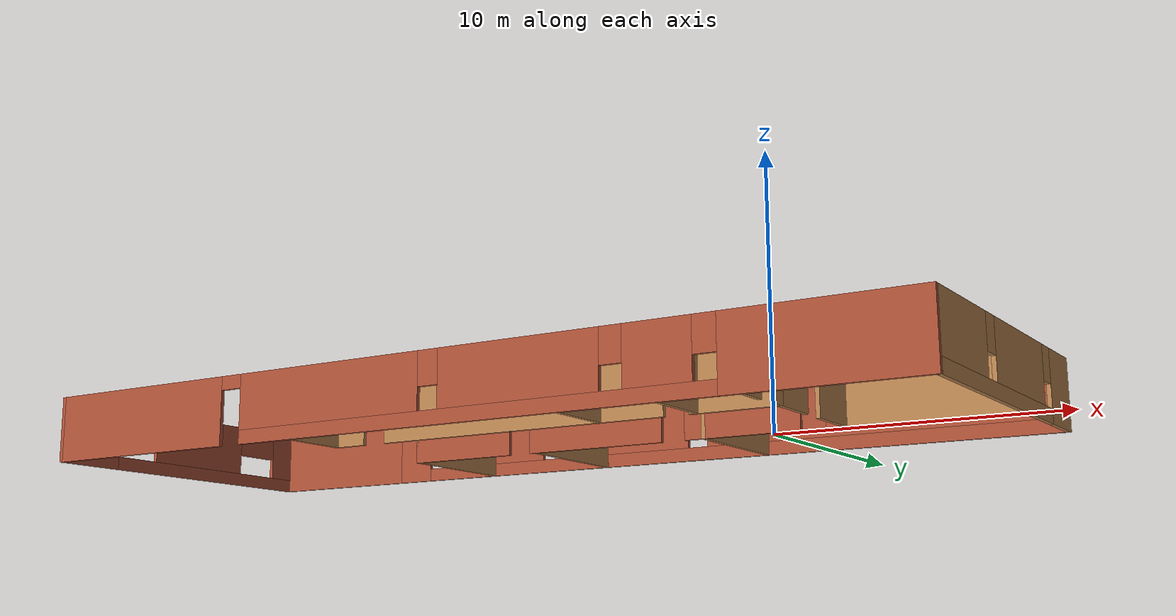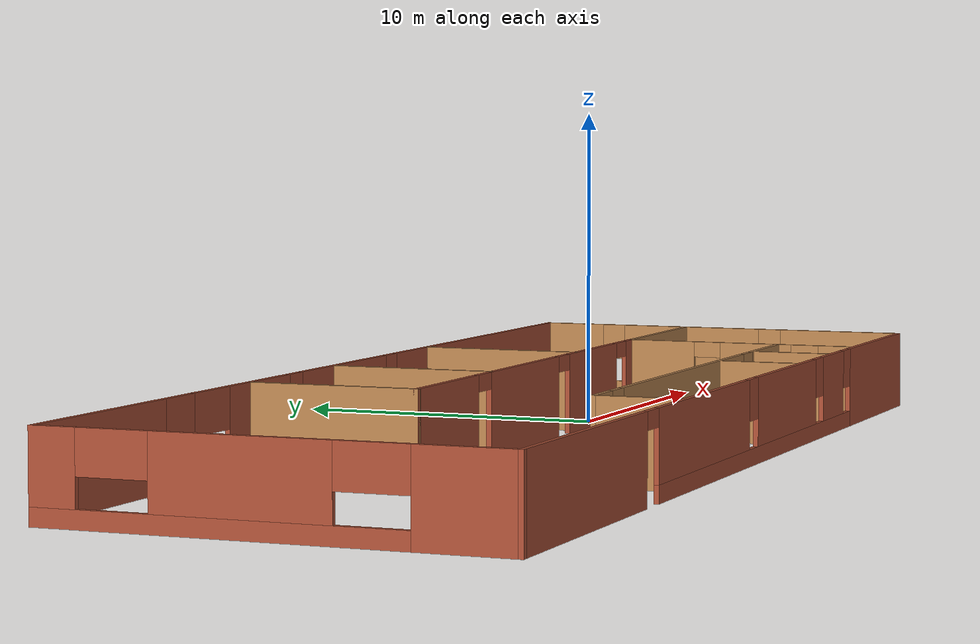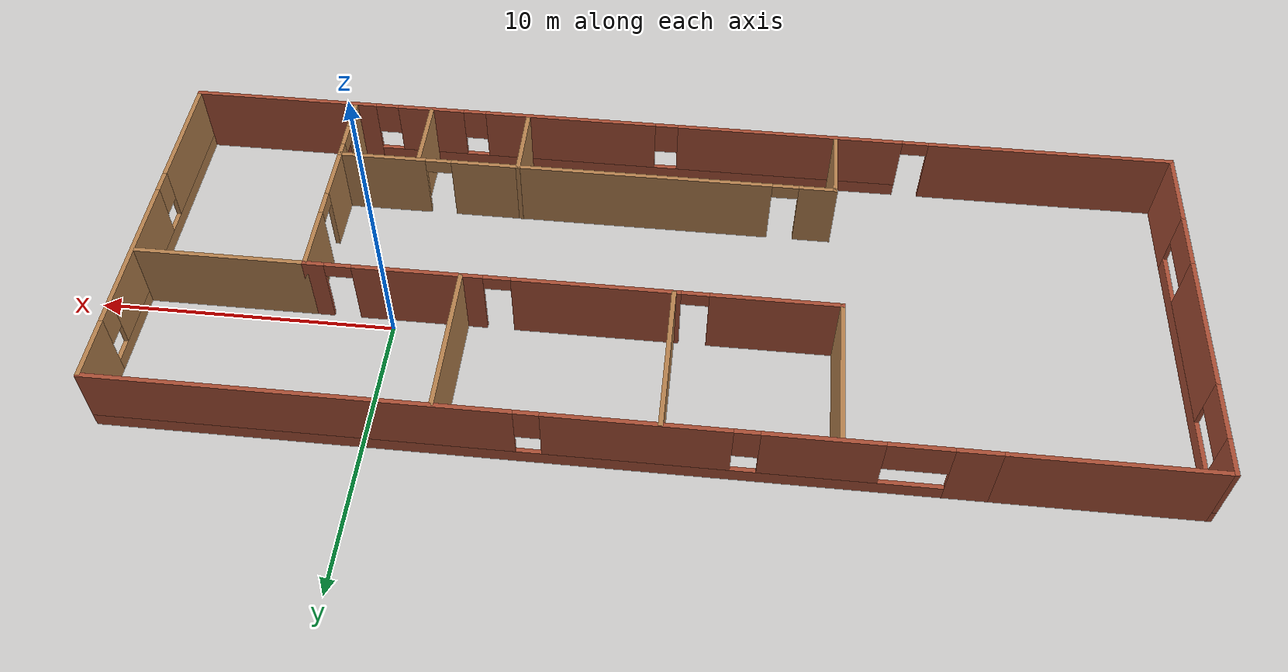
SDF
<?xml version='1.0'?>
<sdf version='1.6'>
  <model name='SingleFloorStructure'>
    <pose frame=''>-8.71396 -1.72074 0 0 -0 0</pose>
    <link name='Wall_1'>
      <pose frame=''>3.25 6.425 0 0 -0 0</pose>
      <visual name='Wall_1_Visual_0'>
        <pose frame=''>-13.2253 0 1.25 0 -0 0</pose>
        <geometry>
          <box>
            <size>1.54948 0.15 2.5</size>
          </box>
        </geometry>
        <material>
          <script>
            <uri>file://media/materials/scripts/gazebo.material</uri>
            <name>Gazebo/Bricks</name>
          </script>
          <ambient>1 1 1 1</ambient>
        </material>
        <meta>
          <layer>0</layer>
        </meta>
      </visual>
      <collision name='Wall_1_Collision_0'>
        <geometry>
          <box>
            <size>1.54948 0.15 2.5</size>
          </box>
        </geometry>
        <pose frame=''>-13.2253 0 1.25 0 -0 0</pose>
      </collision>
      <visual name='Wall_1_Visual_1'>
        <pose frame=''>0.774739 0 0.25 0 -0 0</pose>
        <geometry>
          <box>
            <size>26.4505 0.15 0.5</size>
          </box>
        </geometry>
        <material>
          <script>
            <uri>file://media/materials/scripts/gazebo.material</uri>
            <name>Gazebo/Bricks</name>
          </script>
          <ambient>1 1 1 1</ambient>
        </material>
        <meta>
          <layer>0</layer>
        </meta>
      </visual>
      <collision name='Wall_1_Collision_1'>
        <geometry>
          <box>
            <size>26.4505 0.15 0.5</size>
          </box>
        </geometry>
        <pose frame=''>0.774739 0 0.25 0 -0 0</pose>
      </collision>
      <visual name='Wall_1_Visual_2'>
        <pose frame=''>-8.61765 0 1.5 0 -0 0</pose>
        <geometry>
          <box>
            <size>3.66574 0.15 2</size>
          </box>
        </geometry>
        <material>
          <script>
            <uri>file://media/materials/scripts/gazebo.material</uri>
            <name>Gazebo/Bricks</name>
          </script>
          <ambient>1 1 1 1</ambient>
        </material>
        <meta>
          <layer>0</layer>
        </meta>
      </visual>
      <collision name='Wall_1_Collision_2'>
        <geometry>
          <box>
            <size>3.66574 0.15 2</size>
          </box>
        </geometry>
        <pose frame=''>-8.61765 0 1.5 0 -0 0</pose>
      </collision>
      <visual name='Wall_1_Visual_3'>
        <pose frame=''>-3.09557 0 1.5 0 -0 0</pose>
        <geometry>
          <box>
            <size>5.77843 0.15 2</size>
          </box>
        </geometry>
        <material>
          <script>
            <uri>file://media/materials/scripts/gazebo.material</uri>
            <name>Gazebo/Bricks</name>
          </script>
          <ambient>1 1 1 1</ambient>
        </material>
        <meta>
          <layer>0</layer>
        </meta>
      </visual>
      <collision name='Wall_1_Collision_3'>
        <geometry>
          <box>
            <size>5.77843 0.15 2</size>
          </box>
        </geometry>
        <pose frame=''>-3.09557 0 1.5 0 -0 0</pose>
      </collision>
      <visual name='Wall_1_Visual_4'>
        <pose frame=''>7.29682 0 1.5 0 -0 0</pose>
        <geometry>
          <box>
            <size>13.4064 0.15 2</size>
          </box>
        </geometry>
        <material>
          <script>
            <uri>file://media/materials/scripts/gazebo.material</uri>
            <name>Gazebo/Bricks</name>
          </script>
          <ambient>1 1 1 1</ambient>
        </material>
        <meta>
          <layer>0</layer>
        </meta>
      </visual>
      <collision name='Wall_1_Collision_4'>
        <geometry>
          <box>
            <size>13.4064 0.15 2</size>
          </box>
        </geometry>
        <pose frame=''>7.29682 0 1.5 0 -0 0</pose>
      </collision>
      <visual name='Wall_1_Visual_5'>
        <pose frame=''>-11.4505 0 1.9 0 -0 0</pose>
        <geometry>
          <box>
            <size>2 0.15 1.2</size>
          </box>
        </geometry>
        <material>
          <script>
            <uri>file://media/materials/scripts/gazebo.material</uri>
            <name>Gazebo/Bricks</name>
          </script>
          <ambient>1 1 1 1</ambient>
        </material>
        <meta>
          <layer>0</layer>
        </meta>
      </visual>
      <collision name='Wall_1_Collision_5'>
        <geometry>
          <box>
            <size>2 0.15 1.2</size>
          </box>
        </geometry>
        <pose frame=''>-11.4505 0 1.9 0 -0 0</pose>
      </collision>
      <visual name='Wall_1_Visual_6'>
        <pose frame=''>-6.38478 0 1.9 0 -0 0</pose>
        <geometry>
          <box>
            <size>0.8 0.15 1.2</size>
          </box>
        </geometry>
        <material>
          <script>
            <uri>file://media/materials/scripts/gazebo.material</uri>
            <name>Gazebo/Bricks</name>
          </script>
          <ambient>1 1 1 1</ambient>
        </material>
        <meta>
          <layer>0</layer>
        </meta>
      </visual>
      <collision name='Wall_1_Collision_6'>
        <geometry>
          <box>
            <size>0.8 0.15 1.2</size>
          </box>
        </geometry>
        <pose frame=''>-6.38478 0 1.9 0 -0 0</pose>
      </collision>
      <visual name='Wall_1_Visual_7'>
        <pose frame=''>0.193647 0 1.9 0 -0 0</pose>
        <geometry>
          <box>
            <size>0.8 0.15 1.2</size>
          </box>
        </geometry>
        <material>
          <script>
            <uri>file://media/materials/scripts/gazebo.material</uri>
            <name>Gazebo/Bricks</name>
          </script>
          <ambient>1 1 1 1</ambient>
        </material>
        <meta>
          <layer>0</layer>
        </meta>
      </visual>
      <collision name='Wall_1_Collision_7'>
        <geometry>
          <box>
            <size>0.8 0.15 1.2</size>
          </box>
        </geometry>
        <pose frame=''>0.193647 0 1.9 0 -0 0</pose>
      </collision>
    </link>
    <link name='Wall_10'>
      <pose frame=''>11.4369 -1.29462 0 0 0 -1.5708</pose>
      <visual name='Wall_10_Visual_0'>
        <pose frame=''>-1.45777 0 1.25 0 -0 0</pose>
        <geometry>
          <box>
            <size>2.33446 0.15 2.5</size>
          </box>
        </geometry>
        <material>
          <script>
            <uri>file://media/materials/scripts/gazebo.material</uri>
            <name>Gazebo/Wood</name>
          </script>
          <ambient>1 1 1 1</ambient>
        </material>
        <meta>
          <layer>0</layer>
        </meta>
      </visual>
      <collision name='Wall_10_Collision_0'>
        <geometry>
          <box>
            <size>2.33446 0.15 2.5</size>
          </box>
        </geometry>
        <pose frame=''>-1.45777 0 1.25 0 -0 0</pose>
      </collision>
      <visual name='Wall_10_Visual_1'>
        <pose frame=''>1.61723 0 1.25 0 -0 0</pose>
        <geometry>
          <box>
            <size>2.01554 0.15 2.5</size>
          </box>
        </geometry>
        <material>
          <script>
            <uri>file://media/materials/scripts/gazebo.material</uri>
            <name>Gazebo/Wood</name>
          </script>
          <ambient>1 1 1 1</ambient>
        </material>
        <meta>
          <layer>0</layer>
        </meta>
      </visual>
      <collision name='Wall_10_Collision_1'>
        <geometry>
          <box>
            <size>2.01554 0.15 2.5</size>
          </box>
        </geometry>
        <pose frame=''>1.61723 0 1.25 0 -0 0</pose>
      </collision>
      <visual name='Wall_10_Visual_2'>
        <pose frame=''>0.159457 0 2.25 0 -0 0</pose>
        <geometry>
          <box>
            <size>0.9 0.15 0.5</size>
          </box>
        </geometry>
        <material>
          <script>
            <uri>file://media/materials/scripts/gazebo.material</uri>
            <name>Gazebo/Wood</name>
          </script>
          <ambient>1 1 1 1</ambient>
        </material>
        <meta>
          <layer>0</layer>
        </meta>
      </visual>
      <collision name='Wall_10_Collision_2'>
        <geometry>
          <box>
            <size>0.9 0.15 0.5</size>
          </box>
        </geometry>
        <pose frame=''>0.159457 0 2.25 0 -0 0</pose>
      </collision>
    </link>
    <link name='Wall_11'>
      <pose frame=''>2.88687 -3.84462 0 0 -0 3.14159</pose>
      <visual name='Wall_11_Visual_0'>
        <pose frame=''>-7.08374 0 1.25 0 -0 0</pose>
        <geometry>
          <box>
            <size>3.08253 0.15 2.5</size>
          </box>
        </geometry>
        <material>
          <script>
            <uri>file://media/materials/scripts/gazebo.material</uri>
            <name>Gazebo/Wood</name>
          </script>
          <ambient>1 1 1 1</ambient>
        </material>
        <meta>
          <layer>0</layer>
        </meta>
      </visual>
      <collision name='Wall_11_Collision_0'>
        <geometry>
          <box>
            <size>3.08253 0.15 2.5</size>
          </box>
        </geometry>
        <pose frame=''>-7.08374 0 1.25 0 -0 0</pose>
      </collision>
      <visual name='Wall_11_Visual_1'>
        <pose frame=''>0.886791 0 1.25 0 -0 0</pose>
        <geometry>
          <box>
            <size>11.0585 0.15 2.5</size>
          </box>
        </geometry>
        <material>
          <script>
            <uri>file://media/materials/scripts/gazebo.material</uri>
            <name>Gazebo/Wood</name>
          </script>
          <ambient>1 1 1 1</ambient>
        </material>
        <meta>
          <layer>0</layer>
        </meta>
      </visual>
      <collision name='Wall_11_Collision_1'>
        <geometry>
          <box>
            <size>11.0585 0.15 2.5</size>
          </box>
        </geometry>
        <pose frame=''>0.886791 0 1.25 0 -0 0</pose>
      </collision>
      <visual name='Wall_11_Visual_2'>
        <pose frame=''>7.97053 0 1.25 0 -0 0</pose>
        <geometry>
          <box>
            <size>1.30895 0.15 2.5</size>
          </box>
        </geometry>
        <material>
          <script>
            <uri>file://media/materials/scripts/gazebo.material</uri>
            <name>Gazebo/Wood</name>
          </script>
          <ambient>1 1 1 1</ambient>
        </material>
        <meta>
          <layer>0</layer>
        </meta>
      </visual>
      <collision name='Wall_11_Collision_2'>
        <geometry>
          <box>
            <size>1.30895 0.15 2.5</size>
          </box>
        </geometry>
        <pose frame=''>7.97053 0 1.25 0 -0 0</pose>
      </collision>
      <visual name='Wall_11_Visual_3'>
        <pose frame=''>-5.09247 0 2.25 0 -0 0</pose>
        <geometry>
          <box>
            <size>0.9 0.15 0.5</size>
          </box>
        </geometry>
        <material>
          <script>
            <uri>file://media/materials/scripts/gazebo.material</uri>
            <name>Gazebo/Wood</name>
          </script>
          <ambient>1 1 1 1</ambient>
        </material>
        <meta>
          <layer>0</layer>
        </meta>
      </visual>
      <collision name='Wall_11_Collision_3'>
        <geometry>
          <box>
            <size>0.9 0.15 0.5</size>
          </box>
        </geometry>
        <pose frame=''>-5.09247 0 2.25 0 -0 0</pose>
      </collision>
      <visual name='Wall_11_Visual_4'>
        <pose frame=''>6.86605 0 2.25 0 -0 0</pose>
        <geometry>
          <box>
            <size>0.9 0.15 0.5</size>
          </box>
        </geometry>
        <material>
          <script>
            <uri>file://media/materials/scripts/gazebo.material</uri>
            <name>Gazebo/Wood</name>
          </script>
          <ambient>1 1 1 1</ambient>
        </material>
        <meta>
          <layer>0</layer>
        </meta>
      </visual>
      <collision name='Wall_11_Collision_4'>
        <geometry>
          <box>
            <size>0.9 0.15 0.5</size>
          </box>
        </geometry>
        <pose frame=''>6.86605 0 2.25 0 -0 0</pose>
      </collision>
    </link>
    <link name='Wall_12'>
      <collision name='Wall_12_Collision'>
        <geometry>
          <box>
            <size>2.6 0.15 2.5</size>
          </box>
        </geometry>
        <pose frame=''>0 0 1.25 0 -0 0</pose>
      </collision>
      <visual name='Wall_12_Visual'>
        <pose frame=''>0 0 1.25 0 -0 0</pose>
        <geometry>
          <box>
            <size>2.6 0.15 2.5</size>
          </box>
        </geometry>
        <material>
          <script>
            <uri>file://media/materials/scripts/gazebo.material</uri>
            <name>Gazebo/Wood</name>
          </script>
          <ambient>1 1 1 1</ambient>
        </material>
        <meta>
          <layer>0</layer>
        </meta>
      </visual>
      <pose frame=''>-5.66313 -5.06962 0 0 0 -1.5708</pose>
    </link>
    <link name='Wall_14'>
      <collision name='Wall_14_Collision'>
        <geometry>
          <box>
            <size>5.25 0.15 2.5</size>
          </box>
        </geometry>
        <pose frame=''>0 0 1.25 0 -0 0</pose>
      </collision>
      <visual name='Wall_14_Visual'>
        <pose frame=''>0 0 1.25 0 -0 0</pose>
        <geometry>
          <box>
            <size>5.25 0.15 2.5</size>
          </box>
        </geometry>
        <material>
          <script>
            <uri>file://media/materials/scripts/gazebo.material</uri>
            <name>Gazebo/Wood</name>
          </script>
          <ambient>1 1 1 1</ambient>
        </material>
        <meta>
          <layer>0</layer>
        </meta>
      </visual>
      <pose frame=''>-0.572991 3.84584 0 0 0 -1.5708</pose>
    </link>
    <link name='Wall_16'>
      <collision name='Wall_16_Collision'>
        <geometry>
          <box>
            <size>5.25 0.15 2.5</size>
          </box>
        </geometry>
        <pose frame=''>0 0 1.25 0 -0 0</pose>
      </collision>
      <visual name='Wall_16_Visual'>
        <pose frame=''>0 0 1.25 0 -0 0</pose>
        <geometry>
          <box>
            <size>5.25 0.15 2.5</size>
          </box>
        </geometry>
        <material>
          <script>
            <uri>file://media/materials/scripts/gazebo.material</uri>
            <name>Gazebo/Wood</name>
          </script>
          <ambient>1 1 1 1</ambient>
        </material>
        <meta>
          <layer>0</layer>
        </meta>
      </visual>
      <pose frame=''>6.30446 3.80538 0 0 0 -1.5708</pose>
    </link>
    <link name='Wall_18'>
      <collision name='Wall_18_Collision'>
        <geometry>
          <box>
            <size>5.75 0.15 2.5</size>
          </box>
        </geometry>
        <pose frame=''>0 0 1.25 0 -0 0</pose>
      </collision>
      <visual name='Wall_18_Visual'>
        <pose frame=''>0 0 1.25 0 -0 0</pose>
        <geometry>
          <box>
            <size>5.75 0.15 2.5</size>
          </box>
        </geometry>
        <material>
          <script>
            <uri>file://media/materials/scripts/gazebo.material</uri>
            <name>Gazebo/Wood</name>
          </script>
          <ambient>1 1 1 1</ambient>
        </material>
        <meta>
          <layer>0</layer>
        </meta>
      </visual>
      <pose frame=''>14.2369 1.25538 0 0 -0 0</pose>
    </link>
    <link name='Wall_2'>
      <pose frame=''>17.175 0 0 0 0 -1.5708</pose>
      <visual name='Wall_2_Visual_0'>
        <pose frame=''>-5.40412 0 1.25 0 -0 0</pose>
        <geometry>
          <box>
            <size>2.19175 0.15 2.5</size>
          </box>
        </geometry>
        <material>
          <script>
            <uri>file://media/materials/scripts/gazebo.material</uri>
            <name>Gazebo/Wood</name>
          </script>
          <ambient>1 1 1 1</ambient>
        </material>
        <meta>
          <layer>0</layer>
        </meta>
      </visual>
      <collision name='Wall_2_Collision_0'>
        <geometry>
          <box>
            <size>2.19175 0.15 2.5</size>
          </box>
        </geometry>
        <pose frame=''>-5.40412 0 1.25 0 -0 0</pose>
      </collision>
      <visual name='Wall_2_Visual_1'>
        <pose frame=''>1.09587 0 0.25 0 -0 0</pose>
        <geometry>
          <box>
            <size>10.8082 0.15 0.5</size>
          </box>
        </geometry>
        <material>
          <script>
            <uri>file://media/materials/scripts/gazebo.material</uri>
            <name>Gazebo/Wood</name>
          </script>
          <ambient>1 1 1 1</ambient>
        </material>
        <meta>
          <layer>0</layer>
        </meta>
      </visual>
      <collision name='Wall_2_Collision_1'>
        <geometry>
          <box>
            <size>10.8082 0.15 0.5</size>
          </box>
        </geometry>
        <pose frame=''>1.09587 0 0.25 0 -0 0</pose>
      </collision>
      <visual name='Wall_2_Visual_2'>
        <pose frame=''>-1.02359 0 1.5 0 -0 0</pose>
        <geometry>
          <box>
            <size>4.96932 0.15 2</size>
          </box>
        </geometry>
        <material>
          <script>
            <uri>file://media/materials/scripts/gazebo.material</uri>
            <name>Gazebo/Wood</name>
          </script>
          <ambient>1 1 1 1</ambient>
        </material>
        <meta>
          <layer>0</layer>
        </meta>
      </visual>
      <collision name='Wall_2_Collision_2'>
        <geometry>
          <box>
            <size>4.96932 0.15 2</size>
          </box>
        </geometry>
        <pose frame=''>-1.02359 0 1.5 0 -0 0</pose>
      </collision>
      <visual name='Wall_2_Visual_3'>
        <pose frame=''>4.38053 0 1.5 0 -0 0</pose>
        <geometry>
          <box>
            <size>4.23893 0.15 2</size>
          </box>
        </geometry>
        <material>
          <script>
            <uri>file://media/materials/scripts/gazebo.material</uri>
            <name>Gazebo/Wood</name>
          </script>
          <ambient>1 1 1 1</ambient>
        </material>
        <meta>
          <layer>0</layer>
        </meta>
      </visual>
      <collision name='Wall_2_Collision_3'>
        <geometry>
          <box>
            <size>4.23893 0.15 2</size>
          </box>
        </geometry>
        <pose frame=''>4.38053 0 1.5 0 -0 0</pose>
      </collision>
      <visual name='Wall_2_Visual_4'>
        <pose frame=''>-3.90825 0 1.9 0 -0 0</pose>
        <geometry>
          <box>
            <size>0.8 0.15 1.2</size>
          </box>
        </geometry>
        <material>
          <script>
            <uri>file://media/materials/scripts/gazebo.material</uri>
            <name>Gazebo/Wood</name>
          </script>
          <ambient>1 1 1 1</ambient>
        </material>
        <meta>
          <layer>0</layer>
        </meta>
      </visual>
      <collision name='Wall_2_Collision_4'>
        <geometry>
          <box>
            <size>0.8 0.15 1.2</size>
          </box>
        </geometry>
        <pose frame=''>-3.90825 0 1.9 0 -0 0</pose>
      </collision>
      <visual name='Wall_2_Visual_5'>
        <pose frame=''>1.86107 0 1.9 0 -0 0</pose>
        <geometry>
          <box>
            <size>0.8 0.15 1.2</size>
          </box>
        </geometry>
        <material>
          <script>
            <uri>file://media/materials/scripts/gazebo.material</uri>
            <name>Gazebo/Wood</name>
          </script>
          <ambient>1 1 1 1</ambient>
        </material>
        <meta>
          <layer>0</layer>
        </meta>
      </visual>
      <collision name='Wall_2_Collision_5'>
        <geometry>
          <box>
            <size>0.8 0.15 1.2</size>
          </box>
        </geometry>
        <pose frame=''>1.86107 0 1.9 0 -0 0</pose>
      </collision>
    </link>
    <link name='Wall_24'>
      <pose frame=''>11.4369 -5.06962 0 0 0 -1.5708</pose>
      <visual name='Wall_24_Visual_0'>
        <pose frame=''>-1.01737 0 1.25 0 -0 0</pose>
        <geometry>
          <box>
            <size>0.565265 0.15 2.5</size>
          </box>
        </geometry>
        <material>
          <script>
            <uri>file://media/materials/scripts/gazebo.material</uri>
            <name>Gazebo/Wood</name>
          </script>
          <ambient>1 1 1 1</ambient>
        </material>
        <meta>
          <layer>0</layer>
        </meta>
      </visual>
      <collision name='Wall_24_Collision_0'>
        <geometry>
          <box>
            <size>0.565265 0.15 2.5</size>
          </box>
        </geometry>
        <pose frame=''>-1.01737 0 1.25 0 -0 0</pose>
      </collision>
      <visual name='Wall_24_Visual_1'>
        <pose frame=''>0.732632 0 1.25 0 -0 0</pose>
        <geometry>
          <box>
            <size>1.13474 0.15 2.5</size>
          </box>
        </geometry>
        <material>
          <script>
            <uri>file://media/materials/scripts/gazebo.material</uri>
            <name>Gazebo/Wood</name>
          </script>
          <ambient>1 1 1 1</ambient>
        </material>
        <meta>
          <layer>0</layer>
        </meta>
      </visual>
      <collision name='Wall_24_Collision_1'>
        <geometry>
          <box>
            <size>1.13474 0.15 2.5</size>
          </box>
        </geometry>
        <pose frame=''>0.732632 0 1.25 0 -0 0</pose>
      </collision>
      <visual name='Wall_24_Visual_2'>
        <pose frame=''>-0.284735 0 2.25 0 -0 0</pose>
        <geometry>
          <box>
            <size>0.9 0.15 0.5</size>
          </box>
        </geometry>
        <material>
          <script>
            <uri>file://media/materials/scripts/gazebo.material</uri>
            <name>Gazebo/Wood</name>
          </script>
          <ambient>1 1 1 1</ambient>
        </material>
        <meta>
          <layer>0</layer>
        </meta>
      </visual>
      <collision name='Wall_24_Collision_2'>
        <geometry>
          <box>
            <size>0.9 0.15 0.5</size>
          </box>
        </geometry>
        <pose frame=''>-0.284735 0 2.25 0 -0 0</pose>
      </collision>
    </link>
    <link name='Wall_26'>
      <collision name='Wall_26_Collision'>
        <geometry>
          <box>
            <size>2.6 0.15 2.5</size>
          </box>
        </geometry>
        <pose frame=''>0 0 1.25 0 -0 0</pose>
      </collision>
      <visual name='Wall_26_Visual'>
        <pose frame=''>0 0 1.25 0 -0 0</pose>
        <geometry>
          <box>
            <size>2.6 0.15 2.5</size>
          </box>
        </geometry>
        <material>
          <script>
            <uri>file://media/materials/scripts/gazebo.material</uri>
            <name>Gazebo/Wood</name>
          </script>
          <ambient>1 1 1 1</ambient>
        </material>
        <meta>
          <layer>0</layer>
        </meta>
      </visual>
      <pose frame=''>8.68295 -5.10505 0 0 0 -1.5708</pose>
    </link>
    <link name='Wall_28'>
      <collision name='Wall_28_Collision'>
        <geometry>
          <box>
            <size>2.6 0.15 2.5</size>
          </box>
        </geometry>
        <pose frame=''>0 0 1.25 0 -0 0</pose>
      </collision>
      <visual name='Wall_28_Visual'>
        <pose frame=''>0 0 1.25 0 -0 0</pose>
        <geometry>
          <box>
            <size>2.6 0.15 2.5</size>
          </box>
        </geometry>
        <material>
          <script>
            <uri>file://media/materials/scripts/gazebo.material</uri>
            <name>Gazebo/Wood</name>
          </script>
          <ambient>1 1 1 1</ambient>
        </material>
        <meta>
          <layer>0</layer>
        </meta>
      </visual>
      <pose frame=''>5.20367 -5.06153 0 0 0 -1.5708</pose>
    </link>
    <link name='Wall_3'>
      <pose frame=''>0 -6.425 0 0 -0 3.14159</pose>
      <visual name='Wall_3_Visual_0'>
        <pose frame=''>-13.9768 0 1.25 0 -0 0</pose>
        <geometry>
          <box>
            <size>6.54649 0.15 2.5</size>
          </box>
        </geometry>
        <material>
          <script>
            <uri>file://media/materials/scripts/gazebo.material</uri>
            <name>Gazebo/Bricks</name>
          </script>
          <ambient>1 1 1 1</ambient>
        </material>
        <meta>
          <layer>0</layer>
        </meta>
      </visual>
      <collision name='Wall_3_Collision_0'>
        <geometry>
          <box>
            <size>6.54649 0.15 2.5</size>
          </box>
        </geometry>
        <pose frame=''>-13.9768 0 1.25 0 -0 0</pose>
      </collision>
      <visual name='Wall_3_Visual_1'>
        <pose frame=''>13.0607 0 1.25 0 -0 0</pose>
        <geometry>
          <box>
            <size>8.37863 0.15 2.5</size>
          </box>
        </geometry>
        <material>
          <script>
            <uri>file://media/materials/scripts/gazebo.material</uri>
            <name>Gazebo/Bricks</name>
          </script>
          <ambient>1 1 1 1</ambient>
        </material>
        <meta>
          <layer>0</layer>
        </meta>
      </visual>
      <collision name='Wall_3_Collision_1'>
        <geometry>
          <box>
            <size>8.37863 0.15 2.5</size>
          </box>
        </geometry>
        <pose frame=''>13.0607 0 1.25 0 -0 0</pose>
      </collision>
      <visual name='Wall_3_Visual_2'>
        <pose frame=''>-1.36607 0 0.25 0 -0 0</pose>
        <geometry>
          <box>
            <size>18.6749 0.15 0.5</size>
          </box>
        </geometry>
        <material>
          <script>
            <uri>file://media/materials/scripts/gazebo.material</uri>
            <name>Gazebo/Bricks</name>
          </script>
          <ambient>1 1 1 1</ambient>
        </material>
        <meta>
          <layer>0</layer>
        </meta>
      </visual>
      <collision name='Wall_3_Collision_2'>
        <geometry>
          <box>
            <size>18.6749 0.15 0.5</size>
          </box>
        </geometry>
        <pose frame=''>-1.36607 0 0.25 0 -0 0</pose>
      </collision>
      <visual name='Wall_3_Visual_3'>
        <pose frame=''>-8.72046 0 1.5 0 -0 0</pose>
        <geometry>
          <box>
            <size>2.36609 0.15 2</size>
          </box>
        </geometry>
        <material>
          <script>
            <uri>file://media/materials/scripts/gazebo.material</uri>
            <name>Gazebo/Bricks</name>
          </script>
          <ambient>1 1 1 1</ambient>
        </material>
        <meta>
          <layer>0</layer>
        </meta>
      </visual>
      <collision name='Wall_3_Collision_3'>
        <geometry>
          <box>
            <size>2.36609 0.15 2</size>
          </box>
        </geometry>
        <pose frame=''>-8.72046 0 1.5 0 -0 0</pose>
      </collision>
      <visual name='Wall_3_Visual_4'>
        <pose frame=''>-3.70749 0 1.5 0 -0 0</pose>
        <geometry>
          <box>
            <size>6.05986 0.15 2</size>
          </box>
        </geometry>
        <material>
          <script>
            <uri>file://media/materials/scripts/gazebo.material</uri>
            <name>Gazebo/Bricks</name>
          </script>
          <ambient>1 1 1 1</ambient>
        </material>
        <meta>
          <layer>0</layer>
        </meta>
      </visual>
      <collision name='Wall_3_Collision_4'>
        <geometry>
          <box>
            <size>6.05986 0.15 2</size>
          </box>
        </geometry>
        <pose frame=''>-3.70749 0 1.5 0 -0 0</pose>
      </collision>
      <visual name='Wall_3_Visual_5'>
        <pose frame=''>4.04691 0 1.5 0 -0 0</pose>
        <geometry>
          <box>
            <size>7.84893 0.15 2</size>
          </box>
        </geometry>
        <material>
          <script>
            <uri>file://media/materials/scripts/gazebo.material</uri>
            <name>Gazebo/Bricks</name>
          </script>
          <ambient>1 1 1 1</ambient>
        </material>
        <meta>
          <layer>0</layer>
        </meta>
      </visual>
      <collision name='Wall_3_Collision_5'>
        <geometry>
          <box>
            <size>7.84893 0.15 2</size>
          </box>
        </geometry>
        <pose frame=''>4.04691 0 1.5 0 -0 0</pose>
      </collision>
      <visual name='Wall_3_Visual_6'>
        <pose frame=''>-10.3035 0 1.9 0 -0 0</pose>
        <geometry>
          <box>
            <size>0.8 0.15 1.2</size>
          </box>
        </geometry>
        <material>
          <script>
            <uri>file://media/materials/scripts/gazebo.material</uri>
            <name>Gazebo/Bricks</name>
          </script>
          <ambient>1 1 1 1</ambient>
        </material>
        <meta>
          <layer>0</layer>
        </meta>
      </visual>
      <collision name='Wall_3_Collision_6'>
        <geometry>
          <box>
            <size>0.8 0.15 1.2</size>
          </box>
        </geometry>
        <pose frame=''>-10.3035 0 1.9 0 -0 0</pose>
      </collision>
      <visual name='Wall_3_Visual_7'>
        <pose frame=''>-7.13742 0 1.9 0 -0 0</pose>
        <geometry>
          <box>
            <size>0.8 0.15 1.2</size>
          </box>
        </geometry>
        <material>
          <script>
            <uri>file://media/materials/scripts/gazebo.material</uri>
            <name>Gazebo/Bricks</name>
          </script>
          <ambient>1 1 1 1</ambient>
        </material>
        <meta>
          <layer>0</layer>
        </meta>
      </visual>
      <collision name='Wall_3_Collision_7'>
        <geometry>
          <box>
            <size>0.8 0.15 1.2</size>
          </box>
        </geometry>
        <pose frame=''>-7.13742 0 1.9 0 -0 0</pose>
      </collision>
      <visual name='Wall_3_Visual_8'>
        <pose frame=''>-0.277559 0 1.9 0 -0 0</pose>
        <geometry>
          <box>
            <size>0.8 0.15 1.2</size>
          </box>
        </geometry>
        <material>
          <script>
            <uri>file://media/materials/scripts/gazebo.material</uri>
            <name>Gazebo/Bricks</name>
          </script>
          <ambient>1 1 1 1</ambient>
        </material>
        <meta>
          <layer>0</layer>
        </meta>
      </visual>
      <collision name='Wall_3_Collision_8'>
        <geometry>
          <box>
            <size>0.8 0.15 1.2</size>
          </box>
        </geometry>
        <pose frame=''>-0.277559 0 1.9 0 -0 0</pose>
      </collision>
      <visual name='Wall_3_Visual_9'>
        <pose frame=''>8.42137 0 2.25 0 -0 0</pose>
        <geometry>
          <box>
            <size>0.9 0.15 0.5</size>
          </box>
        </geometry>
        <material>
          <script>
            <uri>file://media/materials/scripts/gazebo.material</uri>
            <name>Gazebo/Bricks</name>
          </script>
          <ambient>1 1 1 1</ambient>
        </material>
        <meta>
          <layer>0</layer>
        </meta>
      </visual>
      <collision name='Wall_3_Collision_9'>
        <geometry>
          <box>
            <size>0.9 0.15 0.5</size>
          </box>
        </geometry>
        <pose frame=''>8.42137 0 2.25 0 -0 0</pose>
      </collision>
    </link>
    <link name='Wall_4'>
      <pose frame=''>-17.175 0 0 0 -0 1.5708</pose>
      <visual name='Wall_4_Visual_0'>
        <pose frame=''>-5.10268 0 1.25 0 -0 0</pose>
        <geometry>
          <box>
            <size>2.79464 0.15 2.5</size>
          </box>
        </geometry>
        <material>
          <script>
            <uri>file://media/materials/scripts/gazebo.material</uri>
            <name>Gazebo/Bricks</name>
          </script>
          <ambient>1 1 1 1</ambient>
        </material>
        <meta>
          <layer>0</layer>
        </meta>
      </visual>
      <collision name='Wall_4_Collision_0'>
        <geometry>
          <box>
            <size>2.79464 0.15 2.5</size>
          </box>
        </geometry>
        <pose frame=''>-5.10268 0 1.25 0 -0 0</pose>
      </collision>
      <visual name='Wall_4_Visual_1'>
        <pose frame=''>1.39732 0 0.25 0 -0 0</pose>
        <geometry>
          <box>
            <size>10.2054 0.15 0.5</size>
          </box>
        </geometry>
        <material>
          <script>
            <uri>file://media/materials/scripts/gazebo.material</uri>
            <name>Gazebo/Bricks</name>
          </script>
          <ambient>1 1 1 1</ambient>
        </material>
        <meta>
          <layer>0</layer>
        </meta>
      </visual>
      <collision name='Wall_4_Collision_1'>
        <geometry>
          <box>
            <size>10.2054 0.15 0.5</size>
          </box>
        </geometry>
        <pose frame=''>1.39732 0 0.25 0 -0 0</pose>
      </collision>
      <visual name='Wall_4_Visual_2'>
        <pose frame=''>0.74216 0 1.5 0 -0 0</pose>
        <geometry>
          <box>
            <size>4.89504 0.15 2</size>
          </box>
        </geometry>
        <material>
          <script>
            <uri>file://media/materials/scripts/gazebo.material</uri>
            <name>Gazebo/Bricks</name>
          </script>
          <ambient>1 1 1 1</ambient>
        </material>
        <meta>
          <layer>0</layer>
        </meta>
      </visual>
      <collision name='Wall_4_Collision_2'>
        <geometry>
          <box>
            <size>4.89504 0.15 2</size>
          </box>
        </geometry>
        <pose frame=''>0.74216 0 1.5 0 -0 0</pose>
      </collision>
      <visual name='Wall_4_Visual_3'>
        <pose frame=''>5.84484 0 1.5 0 -0 0</pose>
        <geometry>
          <box>
            <size>1.31032 0.15 2</size>
          </box>
        </geometry>
        <material>
          <script>
            <uri>file://media/materials/scripts/gazebo.material</uri>
            <name>Gazebo/Bricks</name>
          </script>
          <ambient>1 1 1 1</ambient>
        </material>
        <meta>
          <layer>0</layer>
        </meta>
      </visual>
      <collision name='Wall_4_Collision_3'>
        <geometry>
          <box>
            <size>1.31032 0.15 2</size>
          </box>
        </geometry>
        <pose frame=''>5.84484 0 1.5 0 -0 0</pose>
      </collision>
      <visual name='Wall_4_Visual_4'>
        <pose frame=''>-2.70536 0 1.9 0 -0 0</pose>
        <geometry>
          <box>
            <size>2 0.15 1.2</size>
          </box>
        </geometry>
        <material>
          <script>
            <uri>file://media/materials/scripts/gazebo.material</uri>
            <name>Gazebo/Bricks</name>
          </script>
          <ambient>1 1 1 1</ambient>
        </material>
        <meta>
          <layer>0</layer>
        </meta>
      </visual>
      <collision name='Wall_4_Collision_4'>
        <geometry>
          <box>
            <size>2 0.15 1.2</size>
          </box>
        </geometry>
        <pose frame=''>-2.70536 0 1.9 0 -0 0</pose>
      </collision>
      <visual name='Wall_4_Visual_5'>
        <pose frame=''>4.18968 0 1.9 0 -0 0</pose>
        <geometry>
          <box>
            <size>2 0.15 1.2</size>
          </box>
        </geometry>
        <material>
          <script>
            <uri>file://media/materials/scripts/gazebo.material</uri>
            <name>Gazebo/Bricks</name>
          </script>
          <ambient>1 1 1 1</ambient>
        </material>
        <meta>
          <layer>0</layer>
        </meta>
      </visual>
      <collision name='Wall_4_Collision_5'>
        <geometry>
          <box>
            <size>2 0.15 1.2</size>
          </box>
        </geometry>
        <pose frame=''>4.18968 0 1.9 0 -0 0</pose>
      </collision>
    </link>
    <link name='Wall_6'>
      <collision name='Wall_6_Collision'>
        <geometry>
          <box>
            <size>6.65 0.15 2.5</size>
          </box>
        </geometry>
        <pose frame=''>0 0 1.25 0 -0 0</pose>
      </collision>
      <visual name='Wall_6_Visual'>
        <pose frame=''>0 0 1.25 0 -0 0</pose>
        <geometry>
          <box>
            <size>6.65 0.15 2.5</size>
          </box>
        </geometry>
        <material>
          <script>
            <uri>file://media/materials/scripts/gazebo.material</uri>
            <name>Gazebo/Bricks</name>
          </script>
          <ambient>1 1 1 1</ambient>
        </material>
        <meta>
          <layer>0</layer>
        </meta>
      </visual>
      <pose frame=''>-13.925 6.425 0 0 0 -3.14159</pose>
    </link>
    <link name='Wall_8'>
      <collision name='Wall_8_Collision'>
        <geometry>
          <box>
            <size>5.25 0.15 2.5</size>
          </box>
        </geometry>
        <pose frame=''>0 0 1.25 0 -0 0</pose>
      </collision>
      <visual name='Wall_8_Visual'>
        <pose frame=''>0 0 1.25 0 -0 0</pose>
        <geometry>
          <box>
            <size>5.25 0.15 2.5</size>
          </box>
        </geometry>
        <material>
          <script>
            <uri>file://media/materials/scripts/gazebo.material</uri>
            <name>Gazebo/Wood</name>
          </script>
          <ambient>1 1 1 1</ambient>
        </material>
        <meta>
          <layer>0</layer>
        </meta>
      </visual>
      <pose frame=''>-5.91313 3.80538 0 0 0 -1.5708</pose>
    </link>
    <link name='Wall_9'>
      <pose frame=''>2.76187 1.25538 0 0 -0 0</pose>
      <visual name='Wall_9_Visual_0'>
        <pose frame=''>-6.60582 0 1.25 0 -0 0</pose>
        <geometry>
          <box>
            <size>4.28836 0.15 2.5</size>
          </box>
        </geometry>
        <material>
          <script>
            <uri>file://media/materials/scripts/gazebo.material</uri>
            <name>Gazebo/Bricks</name>
          </script>
          <ambient>1 1 1 1</ambient>
        </material>
        <meta>
          <layer>0</layer>
        </meta>
      </visual>
      <collision name='Wall_9_Collision_0'>
        <geometry>
          <box>
            <size>4.28836 0.15 2.5</size>
          </box>
        </geometry>
        <pose frame=''>-6.60582 0 1.25 0 -0 0</pose>
      </collision>
      <visual name='Wall_9_Visual_1'>
        <pose frame=''>-0.819618 0 1.25 0 -0 0</pose>
        <geometry>
          <box>
            <size>5.48405 0.15 2.5</size>
          </box>
        </geometry>
        <material>
          <script>
            <uri>file://media/materials/scripts/gazebo.material</uri>
            <name>Gazebo/Bricks</name>
          </script>
          <ambient>1 1 1 1</ambient>
        </material>
        <meta>
          <layer>0</layer>
        </meta>
      </visual>
      <collision name='Wall_9_Collision_1'>
        <geometry>
          <box>
            <size>5.48405 0.15 2.5</size>
          </box>
        </geometry>
        <pose frame=''>-0.819618 0 1.25 0 -0 0</pose>
      </collision>
      <visual name='Wall_9_Visual_2'>
        <pose frame=''>4.9746 0 1.25 0 -0 0</pose>
        <geometry>
          <box>
            <size>4.30439 0.15 2.5</size>
          </box>
        </geometry>
        <material>
          <script>
            <uri>file://media/materials/scripts/gazebo.material</uri>
            <name>Gazebo/Bricks</name>
          </script>
          <ambient>1 1 1 1</ambient>
        </material>
        <meta>
          <layer>0</layer>
        </meta>
      </visual>
      <collision name='Wall_9_Collision_2'>
        <geometry>
          <box>
            <size>4.30439 0.15 2.5</size>
          </box>
        </geometry>
        <pose frame=''>4.9746 0 1.25 0 -0 0</pose>
      </collision>
      <visual name='Wall_9_Visual_3'>
        <pose frame=''>8.3884 0 1.25 0 -0 0</pose>
        <geometry>
          <box>
            <size>0.723207 0.15 2.5</size>
          </box>
        </geometry>
        <material>
          <script>
            <uri>file://media/materials/scripts/gazebo.material</uri>
            <name>Gazebo/Bricks</name>
          </script>
          <ambient>1 1 1 1</ambient>
        </material>
        <meta>
          <layer>0</layer>
        </meta>
      </visual>
      <collision name='Wall_9_Collision_3'>
        <geometry>
          <box>
            <size>0.723207 0.15 2.5</size>
          </box>
        </geometry>
        <pose frame=''>8.3884 0 1.25 0 -0 0</pose>
      </collision>
      <visual name='Wall_9_Visual_4'>
        <pose frame=''>-4.01164 0 2.25 0 -0 0</pose>
        <geometry>
          <box>
            <size>0.9 0.15 0.5</size>
          </box>
        </geometry>
        <material>
          <script>
            <uri>file://media/materials/scripts/gazebo.material</uri>
            <name>Gazebo/Bricks</name>
          </script>
          <ambient>1 1 1 1</ambient>
        </material>
        <meta>
          <layer>0</layer>
        </meta>
      </visual>
      <collision name='Wall_9_Collision_4'>
        <geometry>
          <box>
            <size>0.9 0.15 0.5</size>
          </box>
        </geometry>
        <pose frame=''>-4.01164 0 2.25 0 -0 0</pose>
      </collision>
      <visual name='Wall_9_Visual_5'>
        <pose frame=''>2.37241 0 2.25 0 -0 0</pose>
        <geometry>
          <box>
            <size>0.9 0.15 0.5</size>
          </box>
        </geometry>
        <material>
          <script>
            <uri>file://media/materials/scripts/gazebo.material</uri>
            <name>Gazebo/Bricks</name>
          </script>
          <ambient>1 1 1 1</ambient>
        </material>
        <meta>
          <layer>0</layer>
        </meta>
      </visual>
      <collision name='Wall_9_Collision_5'>
        <geometry>
          <box>
            <size>0.9 0.15 0.5</size>
          </box>
        </geometry>
        <pose frame=''>2.37241 0 2.25 0 -0 0</pose>
      </collision>
      <visual name='Wall_9_Visual_6'>
        <pose frame=''>7.57679 0 2.25 0 -0 0</pose>
        <geometry>
          <box>
            <size>0.9 0.15 0.5</size>
          </box>
        </geometry>
        <material>
          <script>
            <uri>file://media/materials/scripts/gazebo.material</uri>
            <name>Gazebo/Bricks</name>
          </script>
          <ambient>1 1 1 1</ambient>
        </material>
        <meta>
          <layer>0</layer>
        </meta>
      </visual>
      <collision name='Wall_9_Collision_6'>
        <geometry>
          <box>
            <size>0.9 0.15 0.5</size>
          </box>
        </geometry>
        <pose frame=''>7.57679 0 2.25 0 -0 0</pose>
      </collision>
    </link>
    <static>1</static>
  </model>
</sdf>
